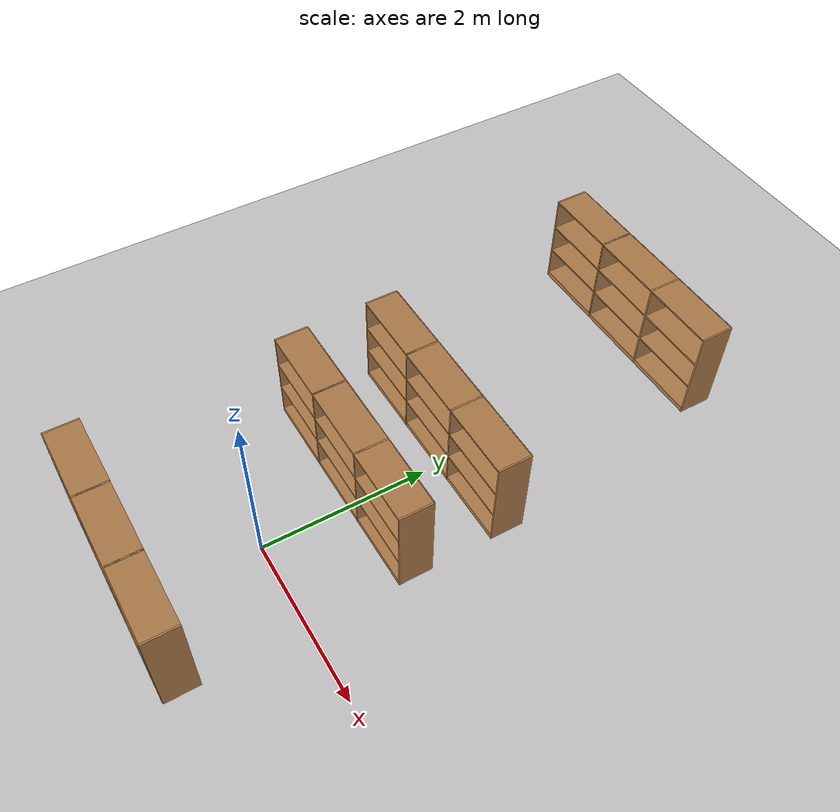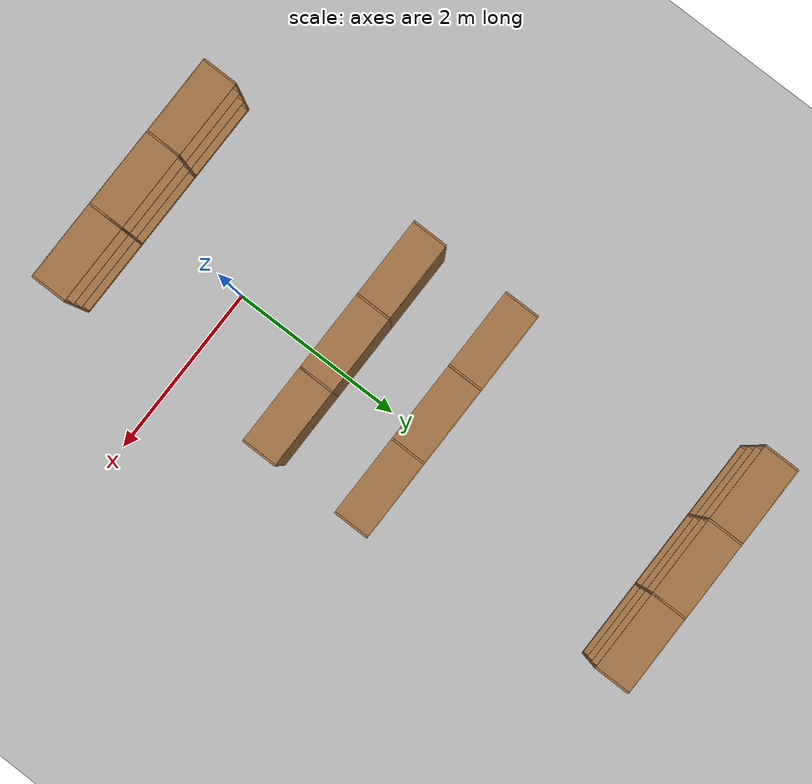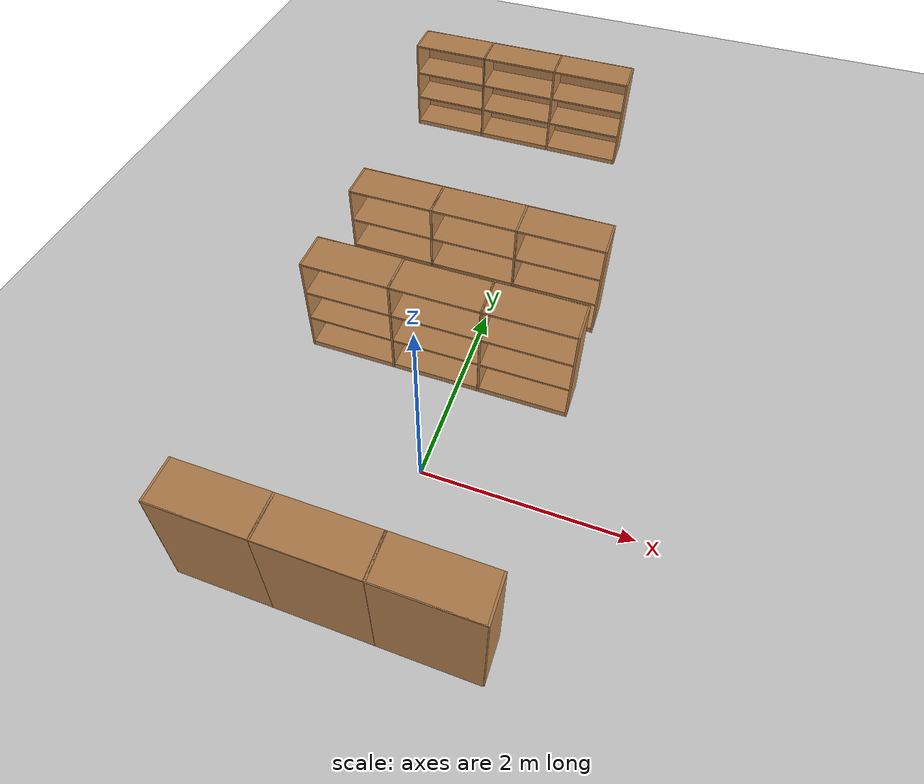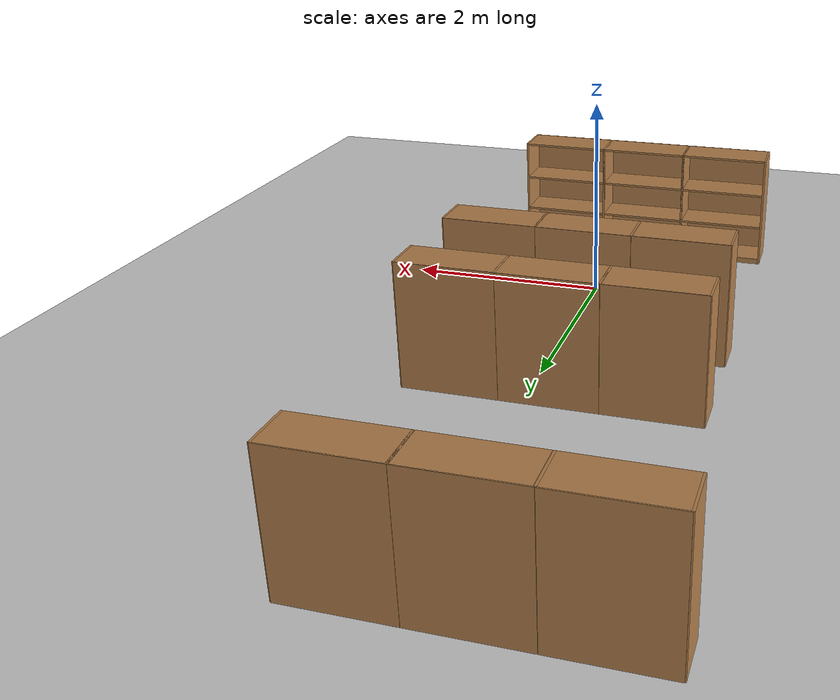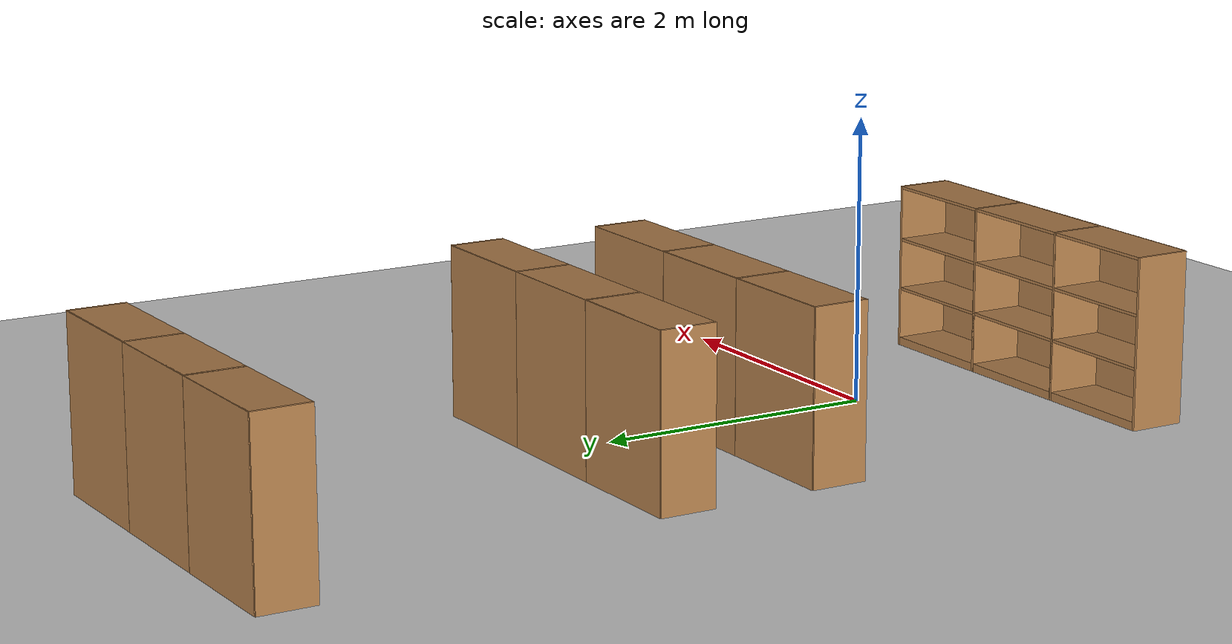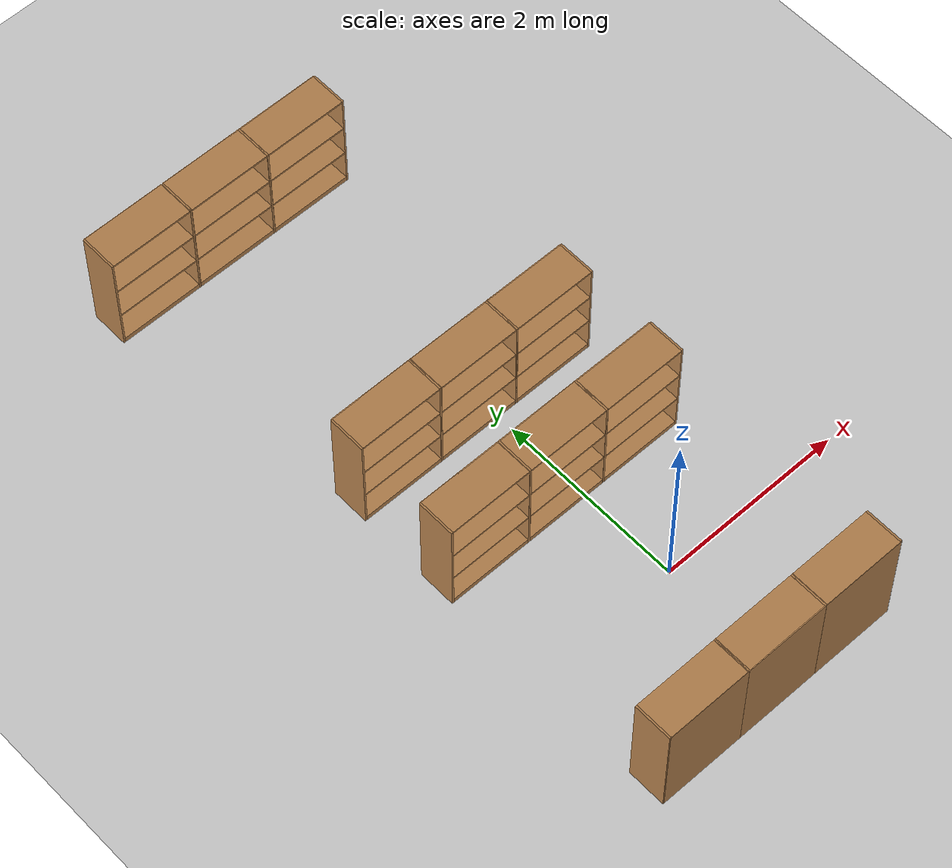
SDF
<sdf version="1.6">
 <world name="default">
  <model name="Bookself-3">
   <model name="bookshelf_0">
    <static>1</static>
    <link name="link">
     <inertial><mass>1</mass></inertial>
     <collision name="back">
      <pose>0 0.005 0.6 0 -0 0</pose>
      <geometry><box><size>0.9 0.01 1.2</size></box></geometry>
     </collision>
     <visual name="visual1">
      <pose>0 0.005 0.6 0 -0 0</pose>
      <geometry><box><size>0.9 0.01 1.2</size></box></geometry>
      <material>
       <script><uri>file://media/materials/scripts/gazebo.material</uri><name>Gazebo/Wood</name></script>
      </material>
     </visual>
     <collision name="left_side">
      <pose>0.45 -0.195 0.6 0 -0 0</pose>
      <geometry><box><size>0.02 0.4 1.2</size></box></geometry>
     </collision>
     <visual name="visual2">
      <pose>0.45 -0.195 0.6 0 -0 0</pose>
      <geometry><box><size>0.02 0.4 1.2</size></box></geometry>
      <material>
       <script><uri>file://media/materials/scripts/gazebo.material</uri><name>Gazebo/Wood</name></script>
      </material>
     </visual>
     <collision name="right_side">
      <pose>-0.45 -0.195 0.6 0 -0 0</pose>
      <geometry><box><size>0.02 0.4 1.2</size></box></geometry>
     </collision>
     <visual name="visual3">
      <pose>-0.45 -0.195 0.6 0 -0 0</pose>
      <geometry><box><size>0.02 0.4 1.2</size></box></geometry>
      <material>
       <script><uri>file://media/materials/scripts/gazebo.material</uri><name>Gazebo/Wood</name></script>
      </material>
     </visual>
     <collision name="bottom">
      <pose>0 -0.195 0.03 0 -0 0</pose>
      <geometry><box><size>0.88 0.4 0.06</size></box></geometry>
     </collision>
     <visual name="visual4">
      <pose>0 -0.195 0.03 0 -0 0</pose>
      <geometry><box><size>0.88 0.4 0.06</size></box></geometry>
      <material>
       <script><uri>file://media/materials/scripts/gazebo.material</uri><name>Gazebo/Wood</name></script>
      </material>
     </visual>
     <collision name="top">
      <pose>0 -0.195 1.19 0 -0 0</pose>
      <geometry><box><size>0.88 0.4 0.02</size></box></geometry>
     </collision>
     <visual name="visual5">
      <pose>0 -0.195 1.19 0 -0 0</pose>
      <geometry><box><size>0.88 0.4 0.02</size></box></geometry>
      <material>
       <script><uri>file://media/materials/scripts/gazebo.material</uri><name>Gazebo/Wood</name></script>
      </material>
     </visual>
     <collision name="low_shelf">
      <pose>0 -0.195 0.43 0 -0 0</pose>
      <geometry><box><size>0.88 0.4 0.02</size></box></geometry>
     </collision>
     <visual name="visual6">
      <pose>0 -0.195 0.43 0 -0 0</pose>
      <geometry><box><size>0.88 0.4 0.02</size></box></geometry>
      <material>
       <script><uri>file://media/materials/scripts/gazebo.material</uri><name>Gazebo/Wood</name></script>
      </material>
     </visual>
     <collision name="high_shelf">
      <pose>0 -0.195 0.8 0 -0 0</pose>
      <geometry><box><size>0.88 0.4 0.02</size></box></geometry>
     </collision>
     <visual name="visual7">
      <pose>0 -0.195 0.8 0 -0 0</pose>
      <geometry><box><size>0.88 0.4 0.02</size></box></geometry>
      <material>
       <script><uri>file://media/materials/scripts/gazebo.material</uri><name>Gazebo/Wood</name></script>
      </material>
     </visual>
    </link>
    <pose>-0.903039 0 0 0 -0 0</pose>
   </model>
   <model name="bookshelf_1">
    <static>1</static>
    <link name="link">
     <inertial><mass>1</mass></inertial>
     <collision name="back">
      <pose>0 0.005 0.6 0 -0 0</pose>
      <geometry><box><size>0.9 0.01 1.2</size></box></geometry>
     </collision>
     <visual name="visual1">
      <pose>0 0.005 0.6 0 -0 0</pose>
      <geometry><box><size>0.9 0.01 1.2</size></box></geometry>
      <material>
       <script><uri>file://media/materials/scripts/gazebo.material</uri><name>Gazebo/Wood</name></script>
      </material>
     </visual>
     <collision name="left_side">
      <pose>0.45 -0.195 0.6 0 -0 0</pose>
      <geometry><box><size>0.02 0.4 1.2</size></box></geometry>
     </collision>
     <visual name="visual2">
      <pose>0.45 -0.195 0.6 0 -0 0</pose>
      <geometry><box><size>0.02 0.4 1.2</size></box></geometry>
      <material>
       <script><uri>file://media/materials/scripts/gazebo.material</uri><name>Gazebo/Wood</name></script>
      </material>
     </visual>
     <collision name="right_side">
      <pose>-0.45 -0.195 0.6 0 -0 0</pose>
      <geometry><box><size>0.02 0.4 1.2</size></box></geometry>
     </collision>
     <visual name="visual3">
      <pose>-0.45 -0.195 0.6 0 -0 0</pose>
      <geometry><box><size>0.02 0.4 1.2</size></box></geometry>
      <material>
       <script><uri>file://media/materials/scripts/gazebo.material</uri><name>Gazebo/Wood</name></script>
      </material>
     </visual>
     <collision name="bottom">
      <pose>0 -0.195 0.03 0 -0 0</pose>
      <geometry><box><size>0.88 0.4 0.06</size></box></geometry>
     </collision>
     <visual name="visual4">
      <pose>0 -0.195 0.03 0 -0 0</pose>
      <geometry><box><size>0.88 0.4 0.06</size></box></geometry>
      <material>
       <script><uri>file://media/materials/scripts/gazebo.material</uri><name>Gazebo/Wood</name></script>
      </material>
     </visual>
     <collision name="top">
      <pose>0 -0.195 1.19 0 -0 0</pose>
      <geometry><box><size>0.88 0.4 0.02</size></box></geometry>
     </collision>
     <visual name="visual5">
      <pose>0 -0.195 1.19 0 -0 0</pose>
      <geometry><box><size>0.88 0.4 0.02</size></box></geometry>
      <material>
       <script><uri>file://media/materials/scripts/gazebo.material</uri><name>Gazebo/Wood</name></script>
      </material>
     </visual>
     <collision name="low_shelf">
      <pose>0 -0.195 0.43 0 -0 0</pose>
      <geometry><box><size>0.88 0.4 0.02</size></box></geometry>
     </collision>
     <visual name="visual6">
      <pose>0 -0.195 0.43 0 -0 0</pose>
      <geometry><box><size>0.88 0.4 0.02</size></box></geometry>
      <material>
       <script><uri>file://media/materials/scripts/gazebo.material</uri><name>Gazebo/Wood</name></script>
      </material>
     </visual>
     <collision name="high_shelf">
      <pose>0 -0.195 0.8 0 -0 0</pose>
      <geometry><box><size>0.88 0.4 0.02</size></box></geometry>
     </collision>
     <visual name="visual7">
      <pose>0 -0.195 0.8 0 -0 0</pose>
      <geometry><box><size>0.88 0.4 0.02</size></box></geometry>
      <material>
       <script><uri>file://media/materials/scripts/gazebo.material</uri><name>Gazebo/Wood</name></script>
      </material>
     </visual>
    </link>
    <pose>0.000535 0 0 0 -0 0</pose>
   </model>
   <model name="bookshelf_1_clone">
    <static>1</static>
    <link name="link">
     <inertial><mass>1</mass></inertial>
     <collision name="back">
      <pose>0 0.005 0.6 0 -0 0</pose>
      <geometry><box><size>0.9 0.01 1.2</size></box></geometry>
     </collision>
     <visual name="visual1">
      <pose>0 0.005 0.6 0 -0 0</pose>
      <geometry><box><size>0.9 0.01 1.2</size></box></geometry>
      <material>
       <script><uri>file://media/materials/scripts/gazebo.material</uri><name>Gazebo/Wood</name></script>
      </material>
     </visual>
     <collision name="left_side">
      <pose>0.45 -0.195 0.6 0 -0 0</pose>
      <geometry><box><size>0.02 0.4 1.2</size></box></geometry>
     </collision>
     <visual name="visual2">
      <pose>0.45 -0.195 0.6 0 -0 0</pose>
      <geometry><box><size>0.02 0.4 1.2</size></box></geometry>
      <material>
       <script><uri>file://media/materials/scripts/gazebo.material</uri><name>Gazebo/Wood</name></script>
      </material>
     </visual>
     <collision name="right_side">
      <pose>-0.45 -0.195 0.6 0 -0 0</pose>
      <geometry><box><size>0.02 0.4 1.2</size></box></geometry>
     </collision>
     <visual name="visual3">
      <pose>-0.45 -0.195 0.6 0 -0 0</pose>
      <geometry><box><size>0.02 0.4 1.2</size></box></geometry>
      <material>
       <script><uri>file://media/materials/scripts/gazebo.material</uri><name>Gazebo/Wood</name></script>
      </material>
     </visual>
     <collision name="bottom">
      <pose>0 -0.195 0.03 0 -0 0</pose>
      <geometry><box><size>0.88 0.4 0.06</size></box></geometry>
     </collision>
     <visual name="visual4">
      <pose>0 -0.195 0.03 0 -0 0</pose>
      <geometry><box><size>0.88 0.4 0.06</size></box></geometry>
      <material>
       <script><uri>file://media/materials/scripts/gazebo.material</uri><name>Gazebo/Wood</name></script>
      </material>
     </visual>
     <collision name="top">
      <pose>0 -0.195 1.19 0 -0 0</pose>
      <geometry><box><size>0.88 0.4 0.02</size></box></geometry>
     </collision>
     <visual name="visual5">
      <pose>0 -0.195 1.19 0 -0 0</pose>
      <geometry><box><size>0.88 0.4 0.02</size></box></geometry>
      <material>
       <script><uri>file://media/materials/scripts/gazebo.material</uri><name>Gazebo/Wood</name></script>
      </material>
     </visual>
     <collision name="low_shelf">
      <pose>0 -0.195 0.43 0 -0 0</pose>
      <geometry><box><size>0.88 0.4 0.02</size></box></geometry>
     </collision>
     <visual name="visual6">
      <pose>0 -0.195 0.43 0 -0 0</pose>
      <geometry><box><size>0.88 0.4 0.02</size></box></geometry>
      <material>
       <script><uri>file://media/materials/scripts/gazebo.material</uri><name>Gazebo/Wood</name></script>
      </material>
     </visual>
     <collision name="high_shelf">
      <pose>0 -0.195 0.8 0 -0 0</pose>
      <geometry><box><size>0.88 0.4 0.02</size></box></geometry>
     </collision>
     <visual name="visual7">
      <pose>0 -0.195 0.8 0 -0 0</pose>
      <geometry><box><size>0.88 0.4 0.02</size></box></geometry>
      <material>
       <script><uri>file://media/materials/scripts/gazebo.material</uri><name>Gazebo/Wood</name></script>
      </material>
     </visual>
    </link>
    <pose>0.902502 0 0 0 -0 0</pose>
   </model>
   <static>1</static>
   <pose>-0.239191 2.57375 0 0 -0 0</pose>
  </model>
  <model name="Bookself-3_0_clone_1">
   <model name="bookshelf_0">
    <static>1</static>
    <link name="link">
     <inertial><mass>1</mass></inertial>
     <collision name="back">
      <pose>0 0.005 0.6 0 -0 0</pose>
      <geometry><box><size>0.9 0.01 1.2</size></box></geometry>
     </collision>
     <visual name="visual1">
      <pose>0 0.005 0.6 0 -0 0</pose>
      <geometry><box><size>0.9 0.01 1.2</size></box></geometry>
      <material>
       <script><uri>file://media/materials/scripts/gazebo.material</uri><name>Gazebo/Wood</name></script>
      </material>
     </visual>
     <collision name="left_side">
      <pose>0.45 -0.195 0.6 0 -0 0</pose>
      <geometry><box><size>0.02 0.4 1.2</size></box></geometry>
     </collision>
     <visual name="visual2">
      <pose>0.45 -0.195 0.6 0 -0 0</pose>
      <geometry><box><size>0.02 0.4 1.2</size></box></geometry>
      <material>
       <script><uri>file://media/materials/scripts/gazebo.material</uri><name>Gazebo/Wood</name></script>
      </material>
     </visual>
     <collision name="right_side">
      <pose>-0.45 -0.195 0.6 0 -0 0</pose>
      <geometry><box><size>0.02 0.4 1.2</size></box></geometry>
     </collision>
     <visual name="visual3">
      <pose>-0.45 -0.195 0.6 0 -0 0</pose>
      <geometry><box><size>0.02 0.4 1.2</size></box></geometry>
      <material>
       <script><uri>file://media/materials/scripts/gazebo.material</uri><name>Gazebo/Wood</name></script>
      </material>
     </visual>
     <collision name="bottom">
      <pose>0 -0.195 0.03 0 -0 0</pose>
      <geometry><box><size>0.88 0.4 0.06</size></box></geometry>
     </collision>
     <visual name="visual4">
      <pose>0 -0.195 0.03 0 -0 0</pose>
      <geometry><box><size>0.88 0.4 0.06</size></box></geometry>
      <material>
       <script><uri>file://media/materials/scripts/gazebo.material</uri><name>Gazebo/Wood</name></script>
      </material>
     </visual>
     <collision name="top">
      <pose>0 -0.195 1.19 0 -0 0</pose>
      <geometry><box><size>0.88 0.4 0.02</size></box></geometry>
     </collision>
     <visual name="visual5">
      <pose>0 -0.195 1.19 0 -0 0</pose>
      <geometry><box><size>0.88 0.4 0.02</size></box></geometry>
      <material>
       <script><uri>file://media/materials/scripts/gazebo.material</uri><name>Gazebo/Wood</name></script>
      </material>
     </visual>
     <collision name="low_shelf">
      <pose>0 -0.195 0.43 0 -0 0</pose>
      <geometry><box><size>0.88 0.4 0.02</size></box></geometry>
     </collision>
     <visual name="visual6">
      <pose>0 -0.195 0.43 0 -0 0</pose>
      <geometry><box><size>0.88 0.4 0.02</size></box></geometry>
      <material>
       <script><uri>file://media/materials/scripts/gazebo.material</uri><name>Gazebo/Wood</name></script>
      </material>
     </visual>
     <collision name="high_shelf">
      <pose>0 -0.195 0.8 0 -0 0</pose>
      <geometry><box><size>0.88 0.4 0.02</size></box></geometry>
     </collision>
     <visual name="visual7">
      <pose>0 -0.195 0.8 0 -0 0</pose>
      <geometry><box><size>0.88 0.4 0.02</size></box></geometry>
      <material>
       <script><uri>file://media/materials/scripts/gazebo.material</uri><name>Gazebo/Wood</name></script>
      </material>
     </visual>
    </link>
    <pose>-0.903039 0 0 0 -0 0</pose>
   </model>
   <model name="bookshelf_1">
    <static>1</static>
    <link name="link">
     <inertial><mass>1</mass></inertial>
     <collision name="back">
      <pose>0 0.005 0.6 0 -0 0</pose>
      <geometry><box><size>0.9 0.01 1.2</size></box></geometry>
     </collision>
     <visual name="visual1">
      <pose>0 0.005 0.6 0 -0 0</pose>
      <geometry><box><size>0.9 0.01 1.2</size></box></geometry>
      <material>
       <script><uri>file://media/materials/scripts/gazebo.material</uri><name>Gazebo/Wood</name></script>
      </material>
     </visual>
     <collision name="left_side">
      <pose>0.45 -0.195 0.6 0 -0 0</pose>
      <geometry><box><size>0.02 0.4 1.2</size></box></geometry>
     </collision>
     <visual name="visual2">
      <pose>0.45 -0.195 0.6 0 -0 0</pose>
      <geometry><box><size>0.02 0.4 1.2</size></box></geometry>
      <material>
       <script><uri>file://media/materials/scripts/gazebo.material</uri><name>Gazebo/Wood</name></script>
      </material>
     </visual>
     <collision name="right_side">
      <pose>-0.45 -0.195 0.6 0 -0 0</pose>
      <geometry><box><size>0.02 0.4 1.2</size></box></geometry>
     </collision>
     <visual name="visual3">
      <pose>-0.45 -0.195 0.6 0 -0 0</pose>
      <geometry><box><size>0.02 0.4 1.2</size></box></geometry>
      <material>
       <script><uri>file://media/materials/scripts/gazebo.material</uri><name>Gazebo/Wood</name></script>
      </material>
     </visual>
     <collision name="bottom">
      <pose>0 -0.195 0.03 0 -0 0</pose>
      <geometry><box><size>0.88 0.4 0.06</size></box></geometry>
     </collision>
     <visual name="visual4">
      <pose>0 -0.195 0.03 0 -0 0</pose>
      <geometry><box><size>0.88 0.4 0.06</size></box></geometry>
      <material>
       <script><uri>file://media/materials/scripts/gazebo.material</uri><name>Gazebo/Wood</name></script>
      </material>
     </visual>
     <collision name="top">
      <pose>0 -0.195 1.19 0 -0 0</pose>
      <geometry><box><size>0.88 0.4 0.02</size></box></geometry>
     </collision>
     <visual name="visual5">
      <pose>0 -0.195 1.19 0 -0 0</pose>
      <geometry><box><size>0.88 0.4 0.02</size></box></geometry>
      <material>
       <script><uri>file://media/materials/scripts/gazebo.material</uri><name>Gazebo/Wood</name></script>
      </material>
     </visual>
     <collision name="low_shelf">
      <pose>0 -0.195 0.43 0 -0 0</pose>
      <geometry><box><size>0.88 0.4 0.02</size></box></geometry>
     </collision>
     <visual name="visual6">
      <pose>0 -0.195 0.43 0 -0 0</pose>
      <geometry><box><size>0.88 0.4 0.02</size></box></geometry>
      <material>
       <script><uri>file://media/materials/scripts/gazebo.material</uri><name>Gazebo/Wood</name></script>
      </material>
     </visual>
     <collision name="high_shelf">
      <pose>0 -0.195 0.8 0 -0 0</pose>
      <geometry><box><size>0.88 0.4 0.02</size></box></geometry>
     </collision>
     <visual name="visual7">
      <pose>0 -0.195 0.8 0 -0 0</pose>
      <geometry><box><size>0.88 0.4 0.02</size></box></geometry>
      <material>
       <script><uri>file://media/materials/scripts/gazebo.material</uri><name>Gazebo/Wood</name></script>
      </material>
     </visual>
    </link>
    <pose>0.000535 0 0 0 -0 0</pose>
   </model>
   <model name="bookshelf_1_clone">
    <static>1</static>
    <link name="link">
     <inertial><mass>1</mass></inertial>
     <collision name="back">
      <pose>0 0.005 0.6 0 -0 0</pose>
      <geometry><box><size>0.9 0.01 1.2</size></box></geometry>
     </collision>
     <visual name="visual1">
      <pose>0 0.005 0.6 0 -0 0</pose>
      <geometry><box><size>0.9 0.01 1.2</size></box></geometry>
      <material>
       <script><uri>file://media/materials/scripts/gazebo.material</uri><name>Gazebo/Wood</name></script>
      </material>
     </visual>
     <collision name="left_side">
      <pose>0.45 -0.195 0.6 0 -0 0</pose>
      <geometry><box><size>0.02 0.4 1.2</size></box></geometry>
     </collision>
     <visual name="visual2">
      <pose>0.45 -0.195 0.6 0 -0 0</pose>
      <geometry><box><size>0.02 0.4 1.2</size></box></geometry>
      <material>
       <script><uri>file://media/materials/scripts/gazebo.material</uri><name>Gazebo/Wood</name></script>
      </material>
     </visual>
     <collision name="right_side">
      <pose>-0.45 -0.195 0.6 0 -0 0</pose>
      <geometry><box><size>0.02 0.4 1.2</size></box></geometry>
     </collision>
     <visual name="visual3">
      <pose>-0.45 -0.195 0.6 0 -0 0</pose>
      <geometry><box><size>0.02 0.4 1.2</size></box></geometry>
      <material>
       <script><uri>file://media/materials/scripts/gazebo.material</uri><name>Gazebo/Wood</name></script>
      </material>
     </visual>
     <collision name="bottom">
      <pose>0 -0.195 0.03 0 -0 0</pose>
      <geometry><box><size>0.88 0.4 0.06</size></box></geometry>
     </collision>
     <visual name="visual4">
      <pose>0 -0.195 0.03 0 -0 0</pose>
      <geometry><box><size>0.88 0.4 0.06</size></box></geometry>
      <material>
       <script><uri>file://media/materials/scripts/gazebo.material</uri><name>Gazebo/Wood</name></script>
      </material>
     </visual>
     <collision name="top">
      <pose>0 -0.195 1.19 0 -0 0</pose>
      <geometry><box><size>0.88 0.4 0.02</size></box></geometry>
     </collision>
     <visual name="visual5">
      <pose>0 -0.195 1.19 0 -0 0</pose>
      <geometry><box><size>0.88 0.4 0.02</size></box></geometry>
      <material>
       <script><uri>file://media/materials/scripts/gazebo.material</uri><name>Gazebo/Wood</name></script>
      </material>
     </visual>
     <collision name="low_shelf">
      <pose>0 -0.195 0.43 0 -0 0</pose>
      <geometry><box><size>0.88 0.4 0.02</size></box></geometry>
     </collision>
     <visual name="visual6">
      <pose>0 -0.195 0.43 0 -0 0</pose>
      <geometry><box><size>0.88 0.4 0.02</size></box></geometry>
      <material>
       <script><uri>file://media/materials/scripts/gazebo.material</uri><name>Gazebo/Wood</name></script>
      </material>
     </visual>
     <collision name="high_shelf">
      <pose>0 -0.195 0.8 0 -0 0</pose>
      <geometry><box><size>0.88 0.4 0.02</size></box></geometry>
     </collision>
     <visual name="visual7">
      <pose>0 -0.195 0.8 0 -0 0</pose>
      <geometry><box><size>0.88 0.4 0.02</size></box></geometry>
      <material>
       <script><uri>file://media/materials/scripts/gazebo.material</uri><name>Gazebo/Wood</name></script>
      </material>
     </visual>
    </link>
    <pose>0.902502 0 0 0 -0 0</pose>
   </model>
   <static>1</static>
   <pose>-0.239191 1.44201 0 0 -0 0</pose>
  </model>
  <model name="Bookself-3_0_clone_3">
   <model name="bookshelf_0">
    <static>1</static>
    <link name="link">
     <inertial><mass>1</mass></inertial>
     <collision name="back">
      <pose>0 0.005 0.6 0 -0 0</pose>
      <geometry><box><size>0.9 0.01 1.2</size></box></geometry>
     </collision>
     <visual name="visual1">
      <pose>0 0.005 0.6 0 -0 0</pose>
      <geometry><box><size>0.9 0.01 1.2</size></box></geometry>
      <material>
       <script><uri>file://media/materials/scripts/gazebo.material</uri><name>Gazebo/Wood</name></script>
      </material>
     </visual>
     <collision name="left_side">
      <pose>0.45 -0.195 0.6 0 -0 0</pose>
      <geometry><box><size>0.02 0.4 1.2</size></box></geometry>
     </collision>
     <visual name="visual2">
      <pose>0.45 -0.195 0.6 0 -0 0</pose>
      <geometry><box><size>0.02 0.4 1.2</size></box></geometry>
      <material>
       <script><uri>file://media/materials/scripts/gazebo.material</uri><name>Gazebo/Wood</name></script>
      </material>
     </visual>
     <collision name="right_side">
      <pose>-0.45 -0.195 0.6 0 -0 0</pose>
      <geometry><box><size>0.02 0.4 1.2</size></box></geometry>
     </collision>
     <visual name="visual3">
      <pose>-0.45 -0.195 0.6 0 -0 0</pose>
      <geometry><box><size>0.02 0.4 1.2</size></box></geometry>
      <material>
       <script><uri>file://media/materials/scripts/gazebo.material</uri><name>Gazebo/Wood</name></script>
      </material>
     </visual>
     <collision name="bottom">
      <pose>0 -0.195 0.03 0 -0 0</pose>
      <geometry><box><size>0.88 0.4 0.06</size></box></geometry>
     </collision>
     <visual name="visual4">
      <pose>0 -0.195 0.03 0 -0 0</pose>
      <geometry><box><size>0.88 0.4 0.06</size></box></geometry>
      <material>
       <script><uri>file://media/materials/scripts/gazebo.material</uri><name>Gazebo/Wood</name></script>
      </material>
     </visual>
     <collision name="top">
      <pose>0 -0.195 1.19 0 -0 0</pose>
      <geometry><box><size>0.88 0.4 0.02</size></box></geometry>
     </collision>
     <visual name="visual5">
      <pose>0 -0.195 1.19 0 -0 0</pose>
      <geometry><box><size>0.88 0.4 0.02</size></box></geometry>
      <material>
       <script><uri>file://media/materials/scripts/gazebo.material</uri><name>Gazebo/Wood</name></script>
      </material>
     </visual>
     <collision name="low_shelf">
      <pose>0 -0.195 0.43 0 -0 0</pose>
      <geometry><box><size>0.88 0.4 0.02</size></box></geometry>
     </collision>
     <visual name="visual6">
      <pose>0 -0.195 0.43 0 -0 0</pose>
      <geometry><box><size>0.88 0.4 0.02</size></box></geometry>
      <material>
       <script><uri>file://media/materials/scripts/gazebo.material</uri><name>Gazebo/Wood</name></script>
      </material>
     </visual>
     <collision name="high_shelf">
      <pose>0 -0.195 0.8 0 -0 0</pose>
      <geometry><box><size>0.88 0.4 0.02</size></box></geometry>
     </collision>
     <visual name="visual7">
      <pose>0 -0.195 0.8 0 -0 0</pose>
      <geometry><box><size>0.88 0.4 0.02</size></box></geometry>
      <material>
       <script><uri>file://media/materials/scripts/gazebo.material</uri><name>Gazebo/Wood</name></script>
      </material>
     </visual>
    </link>
    <pose>-0.903039 0 0 0 -0 0</pose>
   </model>
   <model name="bookshelf_1">
    <static>1</static>
    <link name="link">
     <inertial><mass>1</mass></inertial>
     <collision name="back">
      <pose>0 0.005 0.6 0 -0 0</pose>
      <geometry><box><size>0.9 0.01 1.2</size></box></geometry>
     </collision>
     <visual name="visual1">
      <pose>0 0.005 0.6 0 -0 0</pose>
      <geometry><box><size>0.9 0.01 1.2</size></box></geometry>
      <material>
       <script><uri>file://media/materials/scripts/gazebo.material</uri><name>Gazebo/Wood</name></script>
      </material>
     </visual>
     <collision name="left_side">
      <pose>0.45 -0.195 0.6 0 -0 0</pose>
      <geometry><box><size>0.02 0.4 1.2</size></box></geometry>
     </collision>
     <visual name="visual2">
      <pose>0.45 -0.195 0.6 0 -0 0</pose>
      <geometry><box><size>0.02 0.4 1.2</size></box></geometry>
      <material>
       <script><uri>file://media/materials/scripts/gazebo.material</uri><name>Gazebo/Wood</name></script>
      </material>
     </visual>
     <collision name="right_side">
      <pose>-0.45 -0.195 0.6 0 -0 0</pose>
      <geometry><box><size>0.02 0.4 1.2</size></box></geometry>
     </collision>
     <visual name="visual3">
      <pose>-0.45 -0.195 0.6 0 -0 0</pose>
      <geometry><box><size>0.02 0.4 1.2</size></box></geometry>
      <material>
       <script><uri>file://media/materials/scripts/gazebo.material</uri><name>Gazebo/Wood</name></script>
      </material>
     </visual>
     <collision name="bottom">
      <pose>0 -0.195 0.03 0 -0 0</pose>
      <geometry><box><size>0.88 0.4 0.06</size></box></geometry>
     </collision>
     <visual name="visual4">
      <pose>0 -0.195 0.03 0 -0 0</pose>
      <geometry><box><size>0.88 0.4 0.06</size></box></geometry>
      <material>
       <script><uri>file://media/materials/scripts/gazebo.material</uri><name>Gazebo/Wood</name></script>
      </material>
     </visual>
     <collision name="top">
      <pose>0 -0.195 1.19 0 -0 0</pose>
      <geometry><box><size>0.88 0.4 0.02</size></box></geometry>
     </collision>
     <visual name="visual5">
      <pose>0 -0.195 1.19 0 -0 0</pose>
      <geometry><box><size>0.88 0.4 0.02</size></box></geometry>
      <material>
       <script><uri>file://media/materials/scripts/gazebo.material</uri><name>Gazebo/Wood</name></script>
      </material>
     </visual>
     <collision name="low_shelf">
      <pose>0 -0.195 0.43 0 -0 0</pose>
      <geometry><box><size>0.88 0.4 0.02</size></box></geometry>
     </collision>
     <visual name="visual6">
      <pose>0 -0.195 0.43 0 -0 0</pose>
      <geometry><box><size>0.88 0.4 0.02</size></box></geometry>
      <material>
       <script><uri>file://media/materials/scripts/gazebo.material</uri><name>Gazebo/Wood</name></script>
      </material>
     </visual>
     <collision name="high_shelf">
      <pose>0 -0.195 0.8 0 -0 0</pose>
      <geometry><box><size>0.88 0.4 0.02</size></box></geometry>
     </collision>
     <visual name="visual7">
      <pose>0 -0.195 0.8 0 -0 0</pose>
      <geometry><box><size>0.88 0.4 0.02</size></box></geometry>
      <material>
       <script><uri>file://media/materials/scripts/gazebo.material</uri><name>Gazebo/Wood</name></script>
      </material>
     </visual>
    </link>
    <pose>0.000535 0 0 0 -0 0</pose>
   </model>
   <model name="bookshelf_1_clone">
    <static>1</static>
    <link name="link">
     <inertial><mass>1</mass></inertial>
     <collision name="back">
      <pose>0 0.005 0.6 0 -0 0</pose>
      <geometry><box><size>0.9 0.01 1.2</size></box></geometry>
     </collision>
     <visual name="visual1">
      <pose>0 0.005 0.6 0 -0 0</pose>
      <geometry><box><size>0.9 0.01 1.2</size></box></geometry>
      <material>
       <script><uri>file://media/materials/scripts/gazebo.material</uri><name>Gazebo/Wood</name></script>
      </material>
     </visual>
     <collision name="left_side">
      <pose>0.45 -0.195 0.6 0 -0 0</pose>
      <geometry><box><size>0.02 0.4 1.2</size></box></geometry>
     </collision>
     <visual name="visual2">
      <pose>0.45 -0.195 0.6 0 -0 0</pose>
      <geometry><box><size>0.02 0.4 1.2</size></box></geometry>
      <material>
       <script><uri>file://media/materials/scripts/gazebo.material</uri><name>Gazebo/Wood</name></script>
      </material>
     </visual>
     <collision name="right_side">
      <pose>-0.45 -0.195 0.6 0 -0 0</pose>
      <geometry><box><size>0.02 0.4 1.2</size></box></geometry>
     </collision>
     <visual name="visual3">
      <pose>-0.45 -0.195 0.6 0 -0 0</pose>
      <geometry><box><size>0.02 0.4 1.2</size></box></geometry>
      <material>
       <script><uri>file://media/materials/scripts/gazebo.material</uri><name>Gazebo/Wood</name></script>
      </material>
     </visual>
     <collision name="bottom">
      <pose>0 -0.195 0.03 0 -0 0</pose>
      <geometry><box><size>0.88 0.4 0.06</size></box></geometry>
     </collision>
     <visual name="visual4">
      <pose>0 -0.195 0.03 0 -0 0</pose>
      <geometry><box><size>0.88 0.4 0.06</size></box></geometry>
      <material>
       <script><uri>file://media/materials/scripts/gazebo.material</uri><name>Gazebo/Wood</name></script>
      </material>
     </visual>
     <collision name="top">
      <pose>0 -0.195 1.19 0 -0 0</pose>
      <geometry><box><size>0.88 0.4 0.02</size></box></geometry>
     </collision>
     <visual name="visual5">
      <pose>0 -0.195 1.19 0 -0 0</pose>
      <geometry><box><size>0.88 0.4 0.02</size></box></geometry>
      <material>
       <script><uri>file://media/materials/scripts/gazebo.material</uri><name>Gazebo/Wood</name></script>
      </material>
     </visual>
     <collision name="low_shelf">
      <pose>0 -0.195 0.43 0 -0 0</pose>
      <geometry><box><size>0.88 0.4 0.02</size></box></geometry>
     </collision>
     <visual name="visual6">
      <pose>0 -0.195 0.43 0 -0 0</pose>
      <geometry><box><size>0.88 0.4 0.02</size></box></geometry>
      <material>
       <script><uri>file://media/materials/scripts/gazebo.material</uri><name>Gazebo/Wood</name></script>
      </material>
     </visual>
     <collision name="high_shelf">
      <pose>0 -0.195 0.8 0 -0 0</pose>
      <geometry><box><size>0.88 0.4 0.02</size></box></geometry>
     </collision>
     <visual name="visual7">
      <pose>0 -0.195 0.8 0 -0 0</pose>
      <geometry><box><size>0.88 0.4 0.02</size></box></geometry>
      <material>
       <script><uri>file://media/materials/scripts/gazebo.material</uri><name>Gazebo/Wood</name></script>
      </material>
     </visual>
    </link>
    <pose>0.902502 0 0 0 -0 0</pose>
   </model>
   <static>1</static>
   <pose>-0.602711 5.47543 0 0 -0 0</pose>
  </model>
  <model name="Bookself-3_0_clone_10_clone_3">
   <model name="bookshelf_0">
    <static>1</static>
    <link name="link">
     <inertial><mass>1</mass></inertial>
     <collision name="back">
      <pose>0 0.005 0.6 0 -0 0</pose>
      <geometry><box><size>0.9 0.01 1.2</size></box></geometry>
     </collision>
     <visual name="visual1">
      <pose>0 0.005 0.6 0 -0 0</pose>
      <geometry><box><size>0.9 0.01 1.2</size></box></geometry>
      <material>
       <script><uri>file://media/materials/scripts/gazebo.material</uri><name>Gazebo/Wood</name></script>
      </material>
     </visual>
     <collision name="left_side">
      <pose>0.45 -0.195 0.6 0 -0 0</pose>
      <geometry><box><size>0.02 0.4 1.2</size></box></geometry>
     </collision>
     <visual name="visual2">
      <pose>0.45 -0.195 0.6 0 -0 0</pose>
      <geometry><box><size>0.02 0.4 1.2</size></box></geometry>
      <material>
       <script><uri>file://media/materials/scripts/gazebo.material</uri><name>Gazebo/Wood</name></script>
      </material>
     </visual>
     <collision name="right_side">
      <pose>-0.45 -0.195 0.6 0 -0 0</pose>
      <geometry><box><size>0.02 0.4 1.2</size></box></geometry>
     </collision>
     <visual name="visual3">
      <pose>-0.45 -0.195 0.6 0 -0 0</pose>
      <geometry><box><size>0.02 0.4 1.2</size></box></geometry>
      <material>
       <script><uri>file://media/materials/scripts/gazebo.material</uri><name>Gazebo/Wood</name></script>
      </material>
     </visual>
     <collision name="bottom">
      <pose>0 -0.195 0.03 0 -0 0</pose>
      <geometry><box><size>0.88 0.4 0.06</size></box></geometry>
     </collision>
     <visual name="visual4">
      <pose>0 -0.195 0.03 0 -0 0</pose>
      <geometry><box><size>0.88 0.4 0.06</size></box></geometry>
      <material>
       <script><uri>file://media/materials/scripts/gazebo.material</uri><name>Gazebo/Wood</name></script>
      </material>
     </visual>
     <collision name="top">
      <pose>0 -0.195 1.19 0 -0 0</pose>
      <geometry><box><size>0.88 0.4 0.02</size></box></geometry>
     </collision>
     <visual name="visual5">
      <pose>0 -0.195 1.19 0 -0 0</pose>
      <geometry><box><size>0.88 0.4 0.02</size></box></geometry>
      <material>
       <script><uri>file://media/materials/scripts/gazebo.material</uri><name>Gazebo/Wood</name></script>
      </material>
     </visual>
     <collision name="low_shelf">
      <pose>0 -0.195 0.43 0 -0 0</pose>
      <geometry><box><size>0.88 0.4 0.02</size></box></geometry>
     </collision>
     <visual name="visual6">
      <pose>0 -0.195 0.43 0 -0 0</pose>
      <geometry><box><size>0.88 0.4 0.02</size></box></geometry>
      <material>
       <script><uri>file://media/materials/scripts/gazebo.material</uri><name>Gazebo/Wood</name></script>
      </material>
     </visual>
     <collision name="high_shelf">
      <pose>0 -0.195 0.8 0 -0 0</pose>
      <geometry><box><size>0.88 0.4 0.02</size></box></geometry>
     </collision>
     <visual name="visual7">
      <pose>0 -0.195 0.8 0 -0 0</pose>
      <geometry><box><size>0.88 0.4 0.02</size></box></geometry>
      <material>
       <script><uri>file://media/materials/scripts/gazebo.material</uri><name>Gazebo/Wood</name></script>
      </material>
     </visual>
    </link>
    <pose>-0.903039 0 0 0 -0 0</pose>
   </model>
   <model name="bookshelf_1">
    <static>1</static>
    <link name="link">
     <inertial><mass>1</mass></inertial>
     <collision name="back">
      <pose>0 0.005 0.6 0 -0 0</pose>
      <geometry><box><size>0.9 0.01 1.2</size></box></geometry>
     </collision>
     <visual name="visual1">
      <pose>0 0.005 0.6 0 -0 0</pose>
      <geometry><box><size>0.9 0.01 1.2</size></box></geometry>
      <material>
       <script><uri>file://media/materials/scripts/gazebo.material</uri><name>Gazebo/Wood</name></script>
      </material>
     </visual>
     <collision name="left_side">
      <pose>0.45 -0.195 0.6 0 -0 0</pose>
      <geometry><box><size>0.02 0.4 1.2</size></box></geometry>
     </collision>
     <visual name="visual2">
      <pose>0.45 -0.195 0.6 0 -0 0</pose>
      <geometry><box><size>0.02 0.4 1.2</size></box></geometry>
      <material>
       <script><uri>file://media/materials/scripts/gazebo.material</uri><name>Gazebo/Wood</name></script>
      </material>
     </visual>
     <collision name="right_side">
      <pose>-0.45 -0.195 0.6 0 -0 0</pose>
      <geometry><box><size>0.02 0.4 1.2</size></box></geometry>
     </collision>
     <visual name="visual3">
      <pose>-0.45 -0.195 0.6 0 -0 0</pose>
      <geometry><box><size>0.02 0.4 1.2</size></box></geometry>
      <material>
       <script><uri>file://media/materials/scripts/gazebo.material</uri><name>Gazebo/Wood</name></script>
      </material>
     </visual>
     <collision name="bottom">
      <pose>0 -0.195 0.03 0 -0 0</pose>
      <geometry><box><size>0.88 0.4 0.06</size></box></geometry>
     </collision>
     <visual name="visual4">
      <pose>0 -0.195 0.03 0 -0 0</pose>
      <geometry><box><size>0.88 0.4 0.06</size></box></geometry>
      <material>
       <script><uri>file://media/materials/scripts/gazebo.material</uri><name>Gazebo/Wood</name></script>
      </material>
     </visual>
     <collision name="top">
      <pose>0 -0.195 1.19 0 -0 0</pose>
      <geometry><box><size>0.88 0.4 0.02</size></box></geometry>
     </collision>
     <visual name="visual5">
      <pose>0 -0.195 1.19 0 -0 0</pose>
      <geometry><box><size>0.88 0.4 0.02</size></box></geometry>
      <material>
       <script><uri>file://media/materials/scripts/gazebo.material</uri><name>Gazebo/Wood</name></script>
      </material>
     </visual>
     <collision name="low_shelf">
      <pose>0 -0.195 0.43 0 -0 0</pose>
      <geometry><box><size>0.88 0.4 0.02</size></box></geometry>
     </collision>
     <visual name="visual6">
      <pose>0 -0.195 0.43 0 -0 0</pose>
      <geometry><box><size>0.88 0.4 0.02</size></box></geometry>
      <material>
       <script><uri>file://media/materials/scripts/gazebo.material</uri><name>Gazebo/Wood</name></script>
      </material>
     </visual>
     <collision name="high_shelf">
      <pose>0 -0.195 0.8 0 -0 0</pose>
      <geometry><box><size>0.88 0.4 0.02</size></box></geometry>
     </collision>
     <visual name="visual7">
      <pose>0 -0.195 0.8 0 -0 0</pose>
      <geometry><box><size>0.88 0.4 0.02</size></box></geometry>
      <material>
       <script><uri>file://media/materials/scripts/gazebo.material</uri><name>Gazebo/Wood</name></script>
      </material>
     </visual>
    </link>
    <pose>0.000535 0 0 0 -0 0</pose>
   </model>
   <model name="bookshelf_1_clone">
    <static>1</static>
    <link name="link">
     <inertial><mass>1</mass></inertial>
     <collision name="back">
      <pose>0 0.005 0.6 0 -0 0</pose>
      <geometry><box><size>0.9 0.01 1.2</size></box></geometry>
     </collision>
     <visual name="visual1">
      <pose>0 0.005 0.6 0 -0 0</pose>
      <geometry><box><size>0.9 0.01 1.2</size></box></geometry>
      <material>
       <script><uri>file://media/materials/scripts/gazebo.material</uri><name>Gazebo/Wood</name></script>
      </material>
     </visual>
     <collision name="left_side">
      <pose>0.45 -0.195 0.6 0 -0 0</pose>
      <geometry><box><size>0.02 0.4 1.2</size></box></geometry>
     </collision>
     <visual name="visual2">
      <pose>0.45 -0.195 0.6 0 -0 0</pose>
      <geometry><box><size>0.02 0.4 1.2</size></box></geometry>
      <material>
       <script><uri>file://media/materials/scripts/gazebo.material</uri><name>Gazebo/Wood</name></script>
      </material>
     </visual>
     <collision name="right_side">
      <pose>-0.45 -0.195 0.6 0 -0 0</pose>
      <geometry><box><size>0.02 0.4 1.2</size></box></geometry>
     </collision>
     <visual name="visual3">
      <pose>-0.45 -0.195 0.6 0 -0 0</pose>
      <geometry><box><size>0.02 0.4 1.2</size></box></geometry>
      <material>
       <script><uri>file://media/materials/scripts/gazebo.material</uri><name>Gazebo/Wood</name></script>
      </material>
     </visual>
     <collision name="bottom">
      <pose>0 -0.195 0.03 0 -0 0</pose>
      <geometry><box><size>0.88 0.4 0.06</size></box></geometry>
     </collision>
     <visual name="visual4">
      <pose>0 -0.195 0.03 0 -0 0</pose>
      <geometry><box><size>0.88 0.4 0.06</size></box></geometry>
      <material>
       <script><uri>file://media/materials/scripts/gazebo.material</uri><name>Gazebo/Wood</name></script>
      </material>
     </visual>
     <collision name="top">
      <pose>0 -0.195 1.19 0 -0 0</pose>
      <geometry><box><size>0.88 0.4 0.02</size></box></geometry>
     </collision>
     <visual name="visual5">
      <pose>0 -0.195 1.19 0 -0 0</pose>
      <geometry><box><size>0.88 0.4 0.02</size></box></geometry>
      <material>
       <script><uri>file://media/materials/scripts/gazebo.material</uri><name>Gazebo/Wood</name></script>
      </material>
     </visual>
     <collision name="low_shelf">
      <pose>0 -0.195 0.43 0 -0 0</pose>
      <geometry><box><size>0.88 0.4 0.02</size></box></geometry>
     </collision>
     <visual name="visual6">
      <pose>0 -0.195 0.43 0 -0 0</pose>
      <geometry><box><size>0.88 0.4 0.02</size></box></geometry>
      <material>
       <script><uri>file://media/materials/scripts/gazebo.material</uri><name>Gazebo/Wood</name></script>
      </material>
     </visual>
     <collision name="high_shelf">
      <pose>0 -0.195 0.8 0 -0 0</pose>
      <geometry><box><size>0.88 0.4 0.02</size></box></geometry>
     </collision>
     <visual name="visual7">
      <pose>0 -0.195 0.8 0 -0 0</pose>
      <geometry><box><size>0.88 0.4 0.02</size></box></geometry>
      <material>
       <script><uri>file://media/materials/scripts/gazebo.material</uri><name>Gazebo/Wood</name></script>
      </material>
     </visual>
    </link>
    <pose>0.902502 0 0 0 -0 0</pose>
   </model>
   <static>1</static>
   <pose>-0.239731 -1.55347 0 0 -0 3.14159</pose>
  </model>
  <model name="ground_plane">
   <static>1</static>
   <link name="link">
    <collision name="collision">
     <geometry><plane><normal>0 0 1</normal><size>100 100</size></plane></geometry>
     <surface><friction><ode><mu>100</mu><mu2>50</mu2></ode></friction></surface>
    </collision>
    <visual name="visual">
     <cast_shadows>0</cast_shadows>
     <geometry><plane><normal>0 0 1</normal><size>100 100</size></plane></geometry>
     <material>
      <script><uri>file://media/materials/scripts/gazebo.material</uri><name>Gazebo/Grey</name></script>
     </material>
    </visual>
   </link>
   <pose>1.79627 -1.63715 0 0 -0 0</pose>
  </model>
 </world>
</sdf>
